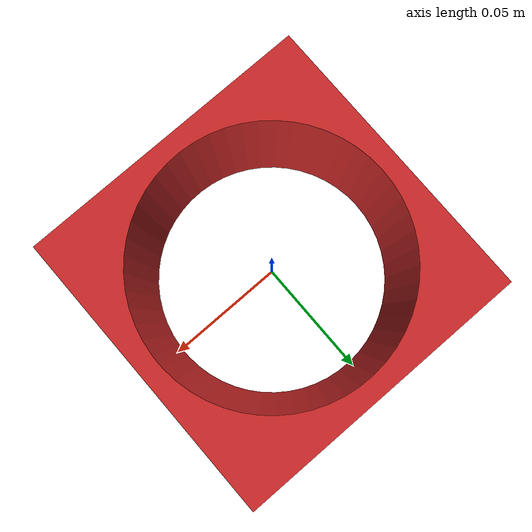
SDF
<?xml version="1.0" ?>
<sdf version='1.4'>
  <model name="0hole_red">
      <static>0</static>
      <link name='link'>
        <inertial>
          <mass>250</mass>
          <inertia>
            <ixx>0.000041667</ixx>
            <ixy>0.000000</ixy>
            <ixz>0.000000</ixz>
            <iyy>0.000041667</iyy>
            <iyz>0.000000</iyz>
            <izz>0.000041667</izz>
          </inertia>
        </inertial>
        <visual name='visual'>
	  <material>
            <script>
              <uri>file://media/materials/scripts/gazebo.material</uri>
              <name>Gazebo/Red</name>
            </script>
  	  </material>
          <geometry>
            <mesh>
              <uri>model://0hole_red/meshes/0hole_red.dae</uri>
	          <scale> 1.5 1.5 1 </scale>
            </mesh>
          </geometry>
        </visual>
        <collision name='collision'>
          <geometry>
            <mesh>
              <uri>model://0hole_red/meshes/0hole_red.dae</uri>
	          <scale> 1.5 1.5 1 </scale>
            </mesh>
          </geometry>
          <surface>
            <friction>
              <ode>
                <mu>30000.0</mu>
                <mu2>30000.0</mu2>
              </ode>
            </friction>
            <contact>
              <ode>
                <kp>1000000.0</kp>
                <kd>100.0</kd>
                <max_vel>1.0</max_vel>
                <min_depth>0.0025</min_depth>
              </ode>
            </contact>
          </surface>
        </collision>
        <velocity_decay>
          <linear>0.000000</linear>
          <angular>0.000000</angular>
        </velocity_decay>
        <self_collide>0</self_collide>
        <kinematic>0</kinematic>
        <gravity>1</gravity>
      </link>
  </model>
</sdf>
